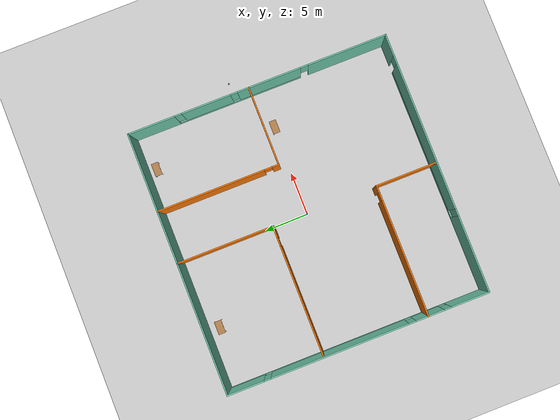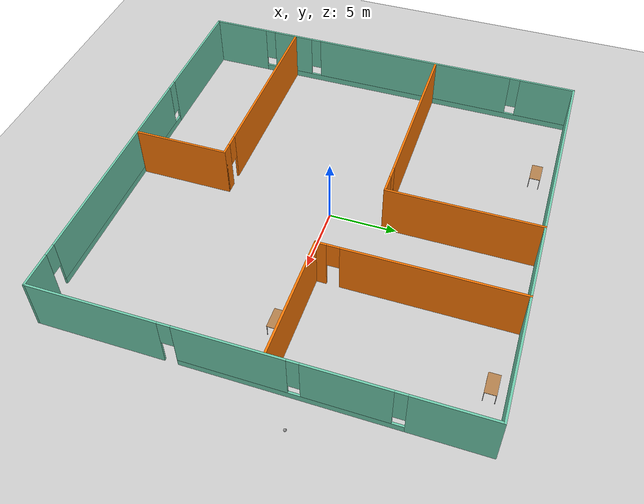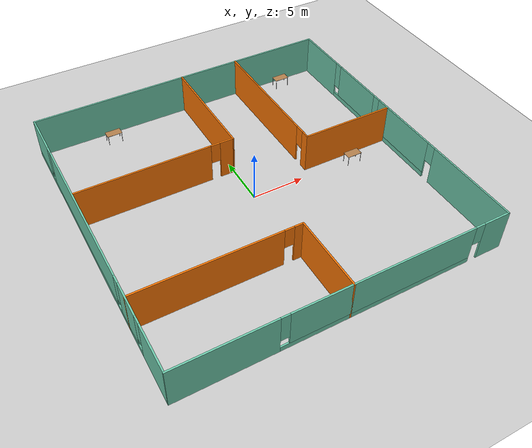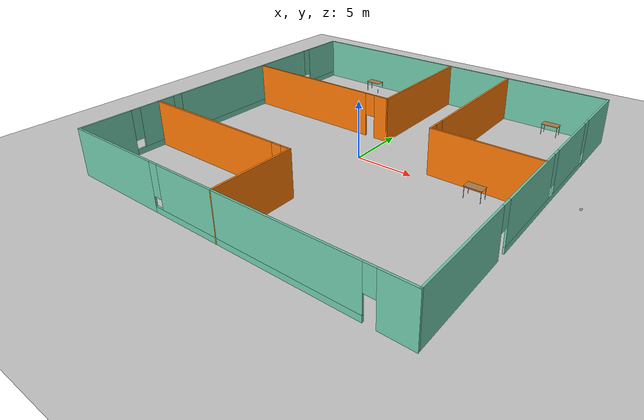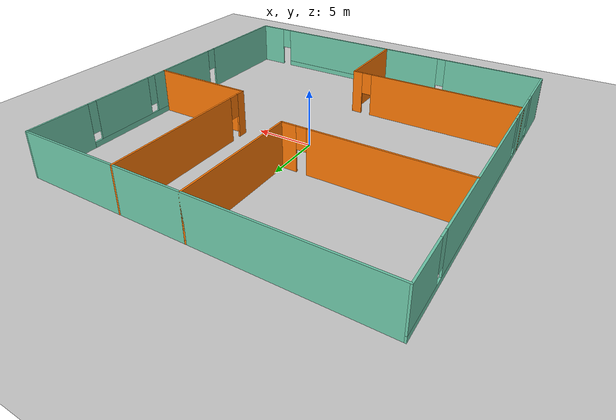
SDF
<sdf version="1.6">
 <world name="default">
  <plugin name="hello" filename="libhello.so"/>
  <light name="sun" type="directional">
   <pose>0 0 10 0 -0 0</pose>
   <diffuse>0.8 0.8 0.8 1</diffuse>
   <specular>0.2 0.2 0.2 1</specular>
   <attenuation>
    <range>1000</range>
    <constant>0.9</constant>
    <linear>0.01</linear>
    <quadratic>0.001</quadratic>
   </attenuation>
   <direction>-0.5 0.1 -0.9</direction>
  </light>
  <model name="ground_plane">
   <static>1</static>
   <link name="link">
    <collision name="collision">
     <geometry><plane><normal>0 0 1</normal><size>100 100</size></plane></geometry>
     <surface>
      <contact><collide_bitmask>65535</collide_bitmask></contact>
      <friction><ode><mu>100</mu><mu2>50</mu2></ode></friction>
     </surface>
    </collision>
    <visual name="visual">
     <cast_shadows>0</cast_shadows>
     <geometry><plane><normal>0 0 1</normal><size>100 100</size></plane></geometry>
     <material>
      <script><uri>file://media/materials/scripts/gazebo.material</uri><name>Gazebo/Grey</name></script>
     </material>
    </visual>
   </link>
  </model>
  <gravity>0 0 -9.8</gravity>
  <magnetic_field>6e-06 2.3e-05 -4.2e-05</magnetic_field>
  <atmosphere type="adiabatic"/>
  <physics name="default_physics" default="0" type="ode">
   <max_step_size>0.001</max_step_size>
   <real_time_factor>1</real_time_factor>
   <real_time_update_rate>1000</real_time_update_rate>
  </physics>
  <scene><ambient>0.4 0.4 0.4 1</ambient><background>0.7 0.7 0.7 1</background><shadows>1</shadows></scene>
  <spherical_coordinates>
   <surface_model>EARTH_WGS84</surface_model>
   <latitude_deg>0</latitude_deg>
   <longitude_deg>0</longitude_deg>
   <elevation>0</elevation>
   <heading_deg>0</heading_deg>
  </spherical_coordinates>
  <model name="mybuilding">
   <link name="Wall_0">
    <pose>0 -15 0 0 -0 0</pose>
    <visual name="Wall_0_Visual_0">
     <pose>-10.633 0 2 0 -0 0</pose>
     <geometry><box><size>8.884 0.15 4</size></box></geometry>
     <material>
      <script><uri>file://media/materials/scripts/gazebo.material</uri><name>Gazebo/Grey</name></script>
      <ambient>0.435294 0.796078 0.67451 1</ambient>
     </material>
     <meta><layer>0</layer></meta>
    </visual>
    <collision name="Wall_0_Collision_0">
     <geometry><box><size>8.884 0.15 4</size></box></geometry>
     <pose>-10.633 0 2 0 -0 0</pose>
    </collision>
    <visual name="Wall_0_Visual_1">
     <pose>13.7885 0 2 0 -0 0</pose>
     <geometry><box><size>2.57292 0.15 4</size></box></geometry>
     <material>
      <script><uri>file://media/materials/scripts/gazebo.material</uri><name>Gazebo/Grey</name></script>
      <ambient>0.435294 0.796078 0.67451 1</ambient>
     </material>
     <meta><layer>0</layer></meta>
    </visual>
    <collision name="Wall_0_Collision_1">
     <geometry><box><size>2.57292 0.15 4</size></box></geometry>
     <pose>13.7885 0 2 0 -0 0</pose>
    </collision>
    <visual name="Wall_0_Visual_2">
     <pose>2.70554 0 0.25 0 -0 0</pose>
     <geometry><box><size>17.7931 0.15 0.5</size></box></geometry>
     <material>
      <script><uri>file://media/materials/scripts/gazebo.material</uri><name>Gazebo/Grey</name></script>
      <ambient>0.435294 0.796078 0.67451 1</ambient>
     </material>
     <meta><layer>0</layer></meta>
    </visual>
    <collision name="Wall_0_Collision_2">
     <geometry><box><size>17.7931 0.15 0.5</size></box></geometry>
     <pose>2.70554 0 0.25 0 -0 0</pose>
    </collision>
    <visual name="Wall_0_Visual_3">
     <pose>3.10554 0 2.25 0 -0 0</pose>
     <geometry><box><size>16.9931 0.15 3.5</size></box></geometry>
     <material>
      <script><uri>file://media/materials/scripts/gazebo.material</uri><name>Gazebo/Grey</name></script>
      <ambient>0.435294 0.796078 0.67451 1</ambient>
     </material>
     <meta><layer>0</layer></meta>
    </visual>
    <collision name="Wall_0_Collision_3">
     <geometry><box><size>16.9931 0.15 3.5</size></box></geometry>
     <pose>3.10554 0 2.25 0 -0 0</pose>
    </collision>
    <visual name="Wall_0_Visual_4">
     <pose>-5.791 0 2.65 0 -0 0</pose>
     <geometry><box><size>0.8 0.15 2.7</size></box></geometry>
     <material>
      <script><uri>file://media/materials/scripts/gazebo.material</uri><name>Gazebo/Grey</name></script>
      <ambient>0.435294 0.796078 0.67451 1</ambient>
     </material>
     <meta><layer>0</layer></meta>
    </visual>
    <collision name="Wall_0_Collision_4">
     <geometry><box><size>0.8 0.15 2.7</size></box></geometry>
     <pose>-5.791 0 2.65 0 -0 0</pose>
    </collision>
    <visual name="Wall_0_Visual_5">
     <pose>12.0521 0 3 0 -0 0</pose>
     <geometry><box><size>0.9 0.15 2</size></box></geometry>
     <material>
      <script><uri>file://media/materials/scripts/gazebo.material</uri><name>Gazebo/Grey</name></script>
      <ambient>0.435294 0.796078 0.67451 1</ambient>
     </material>
     <meta><layer>0</layer></meta>
    </visual>
    <collision name="Wall_0_Collision_5">
     <geometry><box><size>0.9 0.15 2</size></box></geometry>
     <pose>12.0521 0 3 0 -0 0</pose>
    </collision>
   </link>
   <link name="Wall_11">
    <pose>6 8 0 0 0 -1.5708</pose>
    <visual name="Wall_11_Visual_0">
     <pose>-0.873456 0 2 0 -0 0</pose>
     <geometry><box><size>12.4031 0.15 4</size></box></geometry>
     <material>
      <script><uri>file://media/materials/scripts/gazebo.material</uri><name>Gazebo/Grey</name></script>
      <ambient>0.996078 0.47451 0.0196078 1</ambient>
     </material>
     <meta><layer>0</layer></meta>
    </visual>
    <collision name="Wall_11_Collision_0">
     <geometry><box><size>12.4031 0.15 4</size></box></geometry>
     <pose>-0.873456 0 2 0 -0 0</pose>
    </collision>
    <visual name="Wall_11_Visual_1">
     <pose>6.65154 0 2 0 -0 0</pose>
     <geometry><box><size>0.846912 0.15 4</size></box></geometry>
     <material>
      <script><uri>file://media/materials/scripts/gazebo.material</uri><name>Gazebo/Grey</name></script>
      <ambient>0.996078 0.47451 0.0196078 1</ambient>
     </material>
     <meta><layer>0</layer></meta>
    </visual>
    <collision name="Wall_11_Collision_1">
     <geometry><box><size>0.846912 0.15 4</size></box></geometry>
     <pose>6.65154 0 2 0 -0 0</pose>
    </collision>
    <visual name="Wall_11_Visual_2">
     <pose>5.77809 0 3 0 -0 0</pose>
     <geometry><box><size>0.9 0.15 2</size></box></geometry>
     <material>
      <script><uri>file://media/materials/scripts/gazebo.material</uri><name>Gazebo/Grey</name></script>
      <ambient>0.996078 0.47451 0.0196078 1</ambient>
     </material>
     <meta><layer>0</layer></meta>
    </visual>
    <collision name="Wall_11_Collision_2">
     <geometry><box><size>0.9 0.15 2</size></box></geometry>
     <pose>5.77809 0 3 0 -0 0</pose>
    </collision>
   </link>
   <link name="Wall_12">
    <collision name="Wall_12_Collision">
     <geometry><box><size>9.15 0.15 4</size></box></geometry>
     <pose>0 0 2 0 -0 0</pose>
    </collision>
    <visual name="Wall_12_Visual">
     <pose>0 0 2 0 -0 0</pose>
     <geometry><box><size>9.15 0.15 4</size></box></geometry>
     <material>
      <script><uri>file://media/materials/scripts/gazebo.material</uri><name>Gazebo/Grey</name></script>
      <ambient>0.996078 0.47451 0.0196078 1</ambient>
     </material>
     <meta><layer>0</layer></meta>
    </visual>
    <pose>10.5 1 0 0 -0 0</pose>
   </link>
   <link name="Wall_15">
    <pose>-7.5 -8 0 0 -0 0</pose>
    <visual name="Wall_15_Visual_0">
     <pose>-0.899366 0 2 0 -0 0</pose>
     <geometry><box><size>13.3513 0.15 4</size></box></geometry>
     <material>
      <script><uri>file://media/materials/scripts/gazebo.material</uri><name>Gazebo/Grey</name></script>
      <ambient>0.996078 0.47451 0.0196078 1</ambient>
     </material>
     <meta><layer>0</layer></meta>
    </visual>
    <collision name="Wall_15_Collision_0">
     <geometry><box><size>13.3513 0.15 4</size></box></geometry>
     <pose>-0.899366 0 2 0 -0 0</pose>
    </collision>
    <visual name="Wall_15_Visual_1">
     <pose>7.12563 0 2 0 -0 0</pose>
     <geometry><box><size>0.898731 0.15 4</size></box></geometry>
     <material>
      <script><uri>file://media/materials/scripts/gazebo.material</uri><name>Gazebo/Grey</name></script>
      <ambient>0.996078 0.47451 0.0196078 1</ambient>
     </material>
     <meta><layer>0</layer></meta>
    </visual>
    <collision name="Wall_15_Collision_1">
     <geometry><box><size>0.898731 0.15 4</size></box></geometry>
     <pose>7.12563 0 2 0 -0 0</pose>
    </collision>
    <visual name="Wall_15_Visual_2">
     <pose>6.22627 0 3 0 -0 0</pose>
     <geometry><box><size>0.9 0.15 2</size></box></geometry>
     <material>
      <script><uri>file://media/materials/scripts/gazebo.material</uri><name>Gazebo/Grey</name></script>
      <ambient>0.996078 0.47451 0.0196078 1</ambient>
     </material>
     <meta><layer>0</layer></meta>
    </visual>
    <collision name="Wall_15_Collision_2">
     <geometry><box><size>0.9 0.15 2</size></box></geometry>
     <pose>6.22627 0 3 0 -0 0</pose>
    </collision>
   </link>
   <link name="Wall_16">
    <collision name="Wall_16_Collision">
     <geometry><box><size>7.15 0.15 4</size></box></geometry>
     <pose>0 0 2 0 -0 0</pose>
    </collision>
    <visual name="Wall_16_Visual">
     <pose>0 0 2 0 -0 0</pose>
     <geometry><box><size>7.15 0.15 4</size></box></geometry>
     <material>
      <script><uri>file://media/materials/scripts/gazebo.material</uri><name>Gazebo/Grey</name></script>
      <ambient>0.996078 0.47451 0.0196078 1</ambient>
     </material>
     <meta><layer>0</layer></meta>
    </visual>
    <pose>0 -11.5 0 0 0 -1.5708</pose>
   </link>
   <link name="Wall_2">
    <pose>-15 0 0 0 -0 1.5708</pose>
    <visual name="Wall_2_Visual_0">
     <pose>-12.8592 0 2 0 -0 0</pose>
     <geometry><box><size>4.43152 0.15 4</size></box></geometry>
     <material>
      <script><uri>file://media/materials/scripts/gazebo.material</uri><name>Gazebo/Grey</name></script>
      <ambient>0.435294 0.796078 0.67451 1</ambient>
     </material>
     <meta><layer>0</layer></meta>
    </visual>
    <collision name="Wall_2_Collision_0">
     <geometry><box><size>4.43152 0.15 4</size></box></geometry>
     <pose>-12.8592 0 2 0 -0 0</pose>
    </collision>
    <visual name="Wall_2_Visual_1">
     <pose>2.21576 0 0.25 0 -0 0</pose>
     <geometry><box><size>25.7185 0.15 0.5</size></box></geometry>
     <material>
      <script><uri>file://media/materials/scripts/gazebo.material</uri><name>Gazebo/Grey</name></script>
      <ambient>0.435294 0.796078 0.67451 1</ambient>
     </material>
     <meta><layer>0</layer></meta>
    </visual>
    <collision name="Wall_2_Collision_1">
     <geometry><box><size>25.7185 0.15 0.5</size></box></geometry>
     <pose>2.21576 0 0.25 0 -0 0</pose>
    </collision>
    <visual name="Wall_2_Visual_2">
     <pose>-8.20692 0 2.25 0 -0 0</pose>
     <geometry><box><size>3.27311 0.15 3.5</size></box></geometry>
     <material>
      <script><uri>file://media/materials/scripts/gazebo.material</uri><name>Gazebo/Grey</name></script>
      <ambient>0.435294 0.796078 0.67451 1</ambient>
     </material>
     <meta><layer>0</layer></meta>
    </visual>
    <collision name="Wall_2_Collision_2">
     <geometry><box><size>3.27311 0.15 3.5</size></box></geometry>
     <pose>-8.20692 0 2.25 0 -0 0</pose>
    </collision>
    <visual name="Wall_2_Visual_3">
     <pose>2.1359 0 2.25 0 -0 0</pose>
     <geometry><box><size>15.8125 0.15 3.5</size></box></geometry>
     <material>
      <script><uri>file://media/materials/scripts/gazebo.material</uri><name>Gazebo/Grey</name></script>
      <ambient>0.435294 0.796078 0.67451 1</ambient>
     </material>
     <meta><layer>0</layer></meta>
    </visual>
    <collision name="Wall_2_Collision_3">
     <geometry><box><size>15.8125 0.15 3.5</size></box></geometry>
     <pose>2.1359 0 2.25 0 -0 0</pose>
    </collision>
    <visual name="Wall_2_Visual_4">
     <pose>12.9586 0 2.25 0 -0 0</pose>
     <geometry><box><size>4.23284 0.15 3.5</size></box></geometry>
     <material>
      <script><uri>file://media/materials/scripts/gazebo.material</uri><name>Gazebo/Grey</name></script>
      <ambient>0.435294 0.796078 0.67451 1</ambient>
     </material>
     <meta><layer>0</layer></meta>
    </visual>
    <collision name="Wall_2_Collision_4">
     <geometry><box><size>4.23284 0.15 3.5</size></box></geometry>
     <pose>12.9586 0 2.25 0 -0 0</pose>
    </collision>
    <visual name="Wall_2_Visual_5">
     <pose>-10.2435 0 2.65 0 -0 0</pose>
     <geometry><box><size>0.8 0.15 2.7</size></box></geometry>
     <material>
      <script><uri>file://media/materials/scripts/gazebo.material</uri><name>Gazebo/Grey</name></script>
      <ambient>0.435294 0.796078 0.67451 1</ambient>
     </material>
     <meta><layer>0</layer></meta>
    </visual>
    <collision name="Wall_2_Collision_5">
     <geometry><box><size>0.8 0.15 2.7</size></box></geometry>
     <pose>-10.2435 0 2.65 0 -0 0</pose>
    </collision>
    <visual name="Wall_2_Visual_6">
     <pose>-6.17037 0 2.65 0 -0 0</pose>
     <geometry><box><size>0.8 0.15 2.7</size></box></geometry>
     <material>
      <script><uri>file://media/materials/scripts/gazebo.material</uri><name>Gazebo/Grey</name></script>
      <ambient>0.435294 0.796078 0.67451 1</ambient>
     </material>
     <meta><layer>0</layer></meta>
    </visual>
    <collision name="Wall_2_Collision_6">
     <geometry><box><size>0.8 0.15 2.7</size></box></geometry>
     <pose>-6.17037 0 2.65 0 -0 0</pose>
    </collision>
    <visual name="Wall_2_Visual_7">
     <pose>10.4422 0 2.65 0 -0 0</pose>
     <geometry><box><size>0.8 0.15 2.7</size></box></geometry>
     <material>
      <script><uri>file://media/materials/scripts/gazebo.material</uri><name>Gazebo/Grey</name></script>
      <ambient>0.435294 0.796078 0.67451 1</ambient>
     </material>
     <meta><layer>0</layer></meta>
    </visual>
    <collision name="Wall_2_Collision_7">
     <geometry><box><size>0.8 0.15 2.7</size></box></geometry>
     <pose>10.4422 0 2.65 0 -0 0</pose>
    </collision>
   </link>
   <link name="Wall_4">
    <collision name="Wall_4_Collision">
     <geometry><box><size>30.15 0.15 4</size></box></geometry>
     <pose>0 0 2 0 -0 0</pose>
    </collision>
    <visual name="Wall_4_Visual">
     <pose>0 0 2 0 -0 0</pose>
     <geometry><box><size>30.15 0.15 4</size></box></geometry>
     <material>
      <script><uri>file://media/materials/scripts/gazebo.material</uri><name>Gazebo/Grey</name></script>
      <ambient>0.435294 0.796078 0.67451 1</ambient>
     </material>
     <meta><layer>0</layer></meta>
    </visual>
    <pose>0 15 0 0 -0 0</pose>
   </link>
   <link name="Wall_6">
    <pose>15 0 0 0 0 -1.5708</pose>
    <visual name="Wall_6_Visual_0">
     <pose>-12.3389 0 2 0 -0 0</pose>
     <geometry><box><size>5.47227 0.15 4</size></box></geometry>
     <material>
      <script><uri>file://media/materials/scripts/gazebo.material</uri><name>Gazebo/Grey</name></script>
      <ambient>0.435294 0.796078 0.67451 1</ambient>
     </material>
     <meta><layer>0</layer></meta>
    </visual>
    <collision name="Wall_6_Collision_0">
     <geometry><box><size>5.47227 0.15 4</size></box></geometry>
     <pose>-12.3389 0 2 0 -0 0</pose>
    </collision>
    <visual name="Wall_6_Visual_1">
     <pose>10.4919 0 2 0 -0 0</pose>
     <geometry><box><size>9.16611 0.15 4</size></box></geometry>
     <material>
      <script><uri>file://media/materials/scripts/gazebo.material</uri><name>Gazebo/Grey</name></script>
      <ambient>0.435294 0.796078 0.67451 1</ambient>
     </material>
     <meta><layer>0</layer></meta>
    </visual>
    <collision name="Wall_6_Collision_1">
     <geometry><box><size>9.16611 0.15 4</size></box></geometry>
     <pose>10.4919 0 2 0 -0 0</pose>
    </collision>
    <visual name="Wall_6_Visual_2">
     <pose>-2.29692 0 0.25 0 -0 0</pose>
     <geometry><box><size>14.6116 0.15 0.5</size></box></geometry>
     <material>
      <script><uri>file://media/materials/scripts/gazebo.material</uri><name>Gazebo/Grey</name></script>
      <ambient>0.435294 0.796078 0.67451 1</ambient>
     </material>
     <meta><layer>0</layer></meta>
    </visual>
    <collision name="Wall_6_Collision_2">
     <geometry><box><size>14.6116 0.15 0.5</size></box></geometry>
     <pose>-2.29692 0 0.25 0 -0 0</pose>
    </collision>
    <visual name="Wall_6_Visual_3">
     <pose>-5.96326 0 2.25 0 -0 0</pose>
     <geometry><box><size>5.67893 0.15 3.5</size></box></geometry>
     <material>
      <script><uri>file://media/materials/scripts/gazebo.material</uri><name>Gazebo/Grey</name></script>
      <ambient>0.435294 0.796078 0.67451 1</ambient>
     </material>
     <meta><layer>0</layer></meta>
    </visual>
    <collision name="Wall_6_Collision_3">
     <geometry><box><size>5.67893 0.15 3.5</size></box></geometry>
     <pose>-5.96326 0 2.25 0 -0 0</pose>
    </collision>
    <visual name="Wall_6_Visual_4">
     <pose>1.34255 0 2.25 0 -0 0</pose>
     <geometry><box><size>7.3327 0.15 3.5</size></box></geometry>
     <material>
      <script><uri>file://media/materials/scripts/gazebo.material</uri><name>Gazebo/Grey</name></script>
      <ambient>0.435294 0.796078 0.67451 1</ambient>
     </material>
     <meta><layer>0</layer></meta>
    </visual>
    <collision name="Wall_6_Collision_4">
     <geometry><box><size>7.3327 0.15 3.5</size></box></geometry>
     <pose>1.34255 0 2.25 0 -0 0</pose>
    </collision>
    <visual name="Wall_6_Visual_5">
     <pose>-9.20273 0 2.65 0 -0 0</pose>
     <geometry><box><size>0.8 0.15 2.7</size></box></geometry>
     <material>
      <script><uri>file://media/materials/scripts/gazebo.material</uri><name>Gazebo/Grey</name></script>
      <ambient>0.435294 0.796078 0.67451 1</ambient>
     </material>
     <meta><layer>0</layer></meta>
    </visual>
    <collision name="Wall_6_Collision_5">
     <geometry><box><size>0.8 0.15 2.7</size></box></geometry>
     <pose>-9.20273 0 2.65 0 -0 0</pose>
    </collision>
    <visual name="Wall_6_Visual_6">
     <pose>-2.7238 0 2.65 0 -0 0</pose>
     <geometry><box><size>0.8 0.15 2.7</size></box></geometry>
     <material>
      <script><uri>file://media/materials/scripts/gazebo.material</uri><name>Gazebo/Grey</name></script>
      <ambient>0.435294 0.796078 0.67451 1</ambient>
     </material>
     <meta><layer>0</layer></meta>
    </visual>
    <collision name="Wall_6_Collision_6">
     <geometry><box><size>0.8 0.15 2.7</size></box></geometry>
     <pose>-2.7238 0 2.65 0 -0 0</pose>
    </collision>
    <visual name="Wall_6_Visual_7">
     <pose>5.45889 0 3 0 -0 0</pose>
     <geometry><box><size>0.9 0.15 2</size></box></geometry>
     <material>
      <script><uri>file://media/materials/scripts/gazebo.material</uri><name>Gazebo/Grey</name></script>
      <ambient>0.435294 0.796078 0.67451 1</ambient>
     </material>
     <meta><layer>0</layer></meta>
    </visual>
    <collision name="Wall_6_Collision_7">
     <geometry><box><size>0.9 0.15 2</size></box></geometry>
     <pose>5.45889 0 3 0 -0 0</pose>
    </collision>
   </link>
   <link name="Wall_8">
    <pose>-7.5 4 0 0 -0 0</pose>
    <visual name="Wall_8_Visual_0">
     <pose>-1.15244 0 2 0 -0 0</pose>
     <geometry><box><size>12.8451 0.15 4</size></box></geometry>
     <material>
      <script><uri>file://media/materials/scripts/gazebo.material</uri><name>Gazebo/Grey</name></script>
      <ambient>0.996078 0.47451 0.0196078 1</ambient>
     </material>
     <meta><layer>0</layer></meta>
    </visual>
    <collision name="Wall_8_Collision_0">
     <geometry><box><size>12.8451 0.15 4</size></box></geometry>
     <pose>-1.15244 0 2 0 -0 0</pose>
    </collision>
    <visual name="Wall_8_Visual_1">
     <pose>6.87256 0 2 0 -0 0</pose>
     <geometry><box><size>1.40488 0.15 4</size></box></geometry>
     <material>
      <script><uri>file://media/materials/scripts/gazebo.material</uri><name>Gazebo/Grey</name></script>
      <ambient>0.996078 0.47451 0.0196078 1</ambient>
     </material>
     <meta><layer>0</layer></meta>
    </visual>
    <collision name="Wall_8_Collision_1">
     <geometry><box><size>1.40488 0.15 4</size></box></geometry>
     <pose>6.87256 0 2 0 -0 0</pose>
    </collision>
    <visual name="Wall_8_Visual_2">
     <pose>5.72012 0 3 0 -0 0</pose>
     <geometry><box><size>0.9 0.15 2</size></box></geometry>
     <material>
      <script><uri>file://media/materials/scripts/gazebo.material</uri><name>Gazebo/Grey</name></script>
      <ambient>0.996078 0.47451 0.0196078 1</ambient>
     </material>
     <meta><layer>0</layer></meta>
    </visual>
    <collision name="Wall_8_Collision_2">
     <geometry><box><size>0.9 0.15 2</size></box></geometry>
     <pose>5.72012 0 3 0 -0 0</pose>
    </collision>
   </link>
   <link name="Wall_9">
    <collision name="Wall_9_Collision">
     <geometry><box><size>11.15 0.15 4</size></box></geometry>
     <pose>0 0 2 0 -0 0</pose>
    </collision>
    <visual name="Wall_9_Visual">
     <pose>0 0 2 0 -0 0</pose>
     <geometry><box><size>11.15 0.15 4</size></box></geometry>
     <material>
      <script><uri>file://media/materials/scripts/gazebo.material</uri><name>Gazebo/Grey</name></script>
      <ambient>0.996078 0.47451 0.0196078 1</ambient>
     </material>
     <meta><layer>0</layer></meta>
    </visual>
    <pose>0 9.5 0 0 -0 1.5708</pose>
   </link>
   <static>1</static>
  </model>
  <model name="table">
   <static>1</static>
   <link name="link">
    <collision name="surface">
     <pose>0 0 1 0 -0 0</pose>
     <geometry><box><size>1.5 0.8 0.03</size></box></geometry>
     <surface><friction><ode><mu>0.6</mu><mu2>0.6</mu2></ode></friction></surface>
    </collision>
    <visual name="visual1">
     <pose>0 0 1 0 -0 0</pose>
     <geometry><box><size>1.5 0.8 0.03</size></box></geometry>
     <material>
      <script><uri>file://media/materials/scripts/gazebo.material</uri><name>Gazebo/Wood</name></script>
     </material>
    </visual>
    <collision name="front_left_leg">
     <pose>0.68 0.38 0.5 0 -0 0</pose>
     <geometry><cylinder><radius>0.02</radius><length>1</length></cylinder></geometry>
    </collision>
    <visual name="front_left_leg">
     <pose>0.68 0.38 0.5 0 -0 0</pose>
     <geometry><cylinder><radius>0.02</radius><length>1</length></cylinder></geometry>
     <material>
      <script><uri>file://media/materials/scripts/gazebo.material</uri><name>Gazebo/Grey</name></script>
     </material>
    </visual>
    <collision name="front_right_leg">
     <pose>0.68 -0.38 0.5 0 -0 0</pose>
     <geometry><cylinder><radius>0.02</radius><length>1</length></cylinder></geometry>
    </collision>
    <visual name="front_right_leg">
     <pose>0.68 -0.38 0.5 0 -0 0</pose>
     <geometry><cylinder><radius>0.02</radius><length>1</length></cylinder></geometry>
     <material>
      <script><uri>file://media/materials/scripts/gazebo.material</uri><name>Gazebo/Grey</name></script>
     </material>
    </visual>
    <collision name="back_right_leg">
     <pose>-0.68 -0.38 0.5 0 -0 0</pose>
     <geometry><cylinder><radius>0.02</radius><length>1</length></cylinder></geometry>
    </collision>
    <visual name="back_right_leg">
     <pose>-0.68 -0.38 0.5 0 -0 0</pose>
     <geometry><cylinder><radius>0.02</radius><length>1</length></cylinder></geometry>
     <material>
      <script><uri>file://media/materials/scripts/gazebo.material</uri><name>Gazebo/Grey</name></script>
     </material>
    </visual>
    <collision name="back_left_leg">
     <pose>-0.68 0.38 0.5 0 -0 0</pose>
     <geometry><cylinder><radius>0.02</radius><length>1</length></cylinder></geometry>
    </collision>
    <visual name="back_left_leg">
     <pose>-0.68 0.38 0.5 0 -0 0</pose>
     <geometry><cylinder><radius>0.02</radius><length>1</length></cylinder></geometry>
     <material>
      <script><uri>file://media/materials/scripts/gazebo.material</uri><name>Gazebo/Grey</name></script>
     </material>
    </visual>
   </link>
   <pose>10.5355 -0.123051 0 0 -0 0</pose>
  </model>
  <model name="table_0">
   <static>1</static>
   <link name="link">
    <collision name="surface">
     <pose>0 0 1 0 -0 0</pose>
     <geometry><box><size>1.5 0.8 0.03</size></box></geometry>
     <surface><friction><ode><mu>0.6</mu><mu2>0.6</mu2></ode></friction></surface>
    </collision>
    <visual name="visual1">
     <pose>0 0 1 0 -0 0</pose>
     <geometry><box><size>1.5 0.8 0.03</size></box></geometry>
     <material>
      <script><uri>file://media/materials/scripts/gazebo.material</uri><name>Gazebo/Wood</name></script>
     </material>
    </visual>
    <collision name="front_left_leg">
     <pose>0.68 0.38 0.5 0 -0 0</pose>
     <geometry><cylinder><radius>0.02</radius><length>1</length></cylinder></geometry>
    </collision>
    <visual name="front_left_leg">
     <pose>0.68 0.38 0.5 0 -0 0</pose>
     <geometry><cylinder><radius>0.02</radius><length>1</length></cylinder></geometry>
     <material>
      <script><uri>file://media/materials/scripts/gazebo.material</uri><name>Gazebo/Grey</name></script>
     </material>
    </visual>
    <collision name="front_right_leg">
     <pose>0.68 -0.38 0.5 0 -0 0</pose>
     <geometry><cylinder><radius>0.02</radius><length>1</length></cylinder></geometry>
    </collision>
    <visual name="front_right_leg">
     <pose>0.68 -0.38 0.5 0 -0 0</pose>
     <geometry><cylinder><radius>0.02</radius><length>1</length></cylinder></geometry>
     <material>
      <script><uri>file://media/materials/scripts/gazebo.material</uri><name>Gazebo/Grey</name></script>
     </material>
    </visual>
    <collision name="back_right_leg">
     <pose>-0.68 -0.38 0.5 0 -0 0</pose>
     <geometry><cylinder><radius>0.02</radius><length>1</length></cylinder></geometry>
    </collision>
    <visual name="back_right_leg">
     <pose>-0.68 -0.38 0.5 0 -0 0</pose>
     <geometry><cylinder><radius>0.02</radius><length>1</length></cylinder></geometry>
     <material>
      <script><uri>file://media/materials/scripts/gazebo.material</uri><name>Gazebo/Grey</name></script>
     </material>
    </visual>
    <collision name="back_left_leg">
     <pose>-0.68 0.38 0.5 0 -0 0</pose>
     <geometry><cylinder><radius>0.02</radius><length>1</length></cylinder></geometry>
    </collision>
    <visual name="back_left_leg">
     <pose>-0.68 0.38 0.5 0 -0 0</pose>
     <geometry><cylinder><radius>0.02</radius><length>1</length></cylinder></geometry>
     <material>
      <script><uri>file://media/materials/scripts/gazebo.material</uri><name>Gazebo/Grey</name></script>
     </material>
    </visual>
   </link>
   <pose>10.8819 13.9467 0 0 -0 0</pose>
  </model>
  <model name="table_1">
   <static>1</static>
   <link name="link">
    <collision name="surface">
     <pose>0 0 1 0 -0 0</pose>
     <geometry><box><size>1.5 0.8 0.03</size></box></geometry>
     <surface><friction><ode><mu>0.6</mu><mu2>0.6</mu2></ode></friction></surface>
    </collision>
    <visual name="visual1">
     <pose>0 0 1 0 -0 0</pose>
     <geometry><box><size>1.5 0.8 0.03</size></box></geometry>
     <material>
      <script><uri>file://media/materials/scripts/gazebo.material</uri><name>Gazebo/Wood</name></script>
     </material>
    </visual>
    <collision name="front_left_leg">
     <pose>0.68 0.38 0.5 0 -0 0</pose>
     <geometry><cylinder><radius>0.02</radius><length>1</length></cylinder></geometry>
    </collision>
    <visual name="front_left_leg">
     <pose>0.68 0.38 0.5 0 -0 0</pose>
     <geometry><cylinder><radius>0.02</radius><length>1</length></cylinder></geometry>
     <material>
      <script><uri>file://media/materials/scripts/gazebo.material</uri><name>Gazebo/Grey</name></script>
     </material>
    </visual>
    <collision name="front_right_leg">
     <pose>0.68 -0.38 0.5 0 -0 0</pose>
     <geometry><cylinder><radius>0.02</radius><length>1</length></cylinder></geometry>
    </collision>
    <visual name="front_right_leg">
     <pose>0.68 -0.38 0.5 0 -0 0</pose>
     <geometry><cylinder><radius>0.02</radius><length>1</length></cylinder></geometry>
     <material>
      <script><uri>file://media/materials/scripts/gazebo.material</uri><name>Gazebo/Grey</name></script>
     </material>
    </visual>
    <collision name="back_right_leg">
     <pose>-0.68 -0.38 0.5 0 -0 0</pose>
     <geometry><cylinder><radius>0.02</radius><length>1</length></cylinder></geometry>
    </collision>
    <visual name="back_right_leg">
     <pose>-0.68 -0.38 0.5 0 -0 0</pose>
     <geometry><cylinder><radius>0.02</radius><length>1</length></cylinder></geometry>
     <material>
      <script><uri>file://media/materials/scripts/gazebo.material</uri><name>Gazebo/Grey</name></script>
     </material>
    </visual>
    <collision name="back_left_leg">
     <pose>-0.68 0.38 0.5 0 -0 0</pose>
     <geometry><cylinder><radius>0.02</radius><length>1</length></cylinder></geometry>
    </collision>
    <visual name="back_left_leg">
     <pose>-0.68 0.38 0.5 0 -0 0</pose>
     <geometry><cylinder><radius>0.02</radius><length>1</length></cylinder></geometry>
     <material>
      <script><uri>file://media/materials/scripts/gazebo.material</uri><name>Gazebo/Grey</name></script>
     </material>
    </visual>
   </link>
   <pose>-8.17973 13.6528 0 0 -0 0</pose>
  </model>
  <model name="my_ball">
   <link name="link_0">
    <inertial>
     <mass>1</mass>
     <inertia><ixx>0.1</ixx><ixy>0</ixy><ixz>0</ixz><iyy>0.1</iyy><iyz>0</iyz><izz>0.1</izz></inertia>
    </inertial>
    <visual name="visual">
     <geometry><sphere><radius>0.1</radius></sphere></geometry>
     <material>
      <lighting>1</lighting>
      <script><uri>file://media/materials/scripts/gazebo.material</uri><name>Gazebo/Grey</name></script>
      <shader type="pixel"><normal_map>__default__</normal_map></shader>
      <ambient>1 1 1 1</ambient>
      <diffuse>1 1 1 1</diffuse>
      <specular>1 1 1 1</specular>
      <emissive>1 1 1 1</emissive>
     </material>
    </visual>
    <collision name="collision">
     <geometry><sphere><radius>0.1</radius></sphere></geometry>
     <surface>
      <friction>
       <ode><mu>1</mu><mu2>1</mu2><fdir1>0 0 0</fdir1><slip1>0</slip1><slip2>0</slip2></ode>
       <torsional>
        <coefficient>1</coefficient>
        <patch_radius>0</patch_radius>
        <surface_radius>0</surface_radius>
        <use_patch_radius>1</use_patch_radius>
        <ode><slip>0</slip></ode>
       </torsional>
      </friction>
      <bounce><restitution_coefficient>0</restitution_coefficient><threshold>1e+06</threshold></bounce>
      <contact>
       <collide_without_contact>0</collide_without_contact>
       <collide_without_contact_bitmask>1</collide_without_contact_bitmask>
       <collide_bitmask>1</collide_bitmask>
       <ode>
        <soft_cfm>0</soft_cfm>
        <soft_erp>0.2</soft_erp>
        <kp>1e+13</kp>
        <kd>1</kd>
        <max_vel>0.01</max_vel>
        <min_depth>0</min_depth>
       </ode>
       <bullet>
        <split_impulse>1</split_impulse>
        <split_impulse_penetration_threshold>-0.01</split_impulse_penetration_threshold>
        <soft_cfm>0</soft_cfm>
        <soft_erp>0.2</soft_erp>
        <kp>1e+13</kp>
        <kd>1</kd>
       </bullet>
      </contact>
     </surface>
    </collision>
   </link>
   <static>0</static>
   <pose>17.2325 2.94652 0.1 0 -0 0</pose>
  </model>
 </world>
</sdf>
